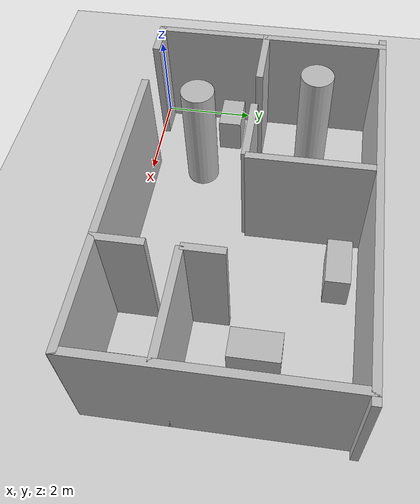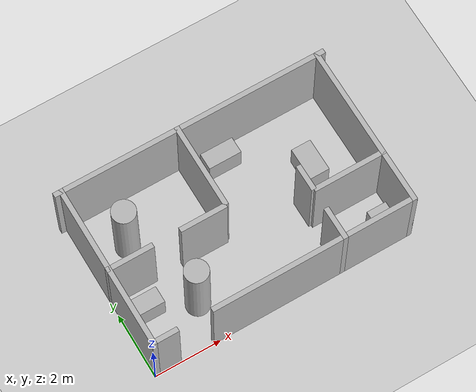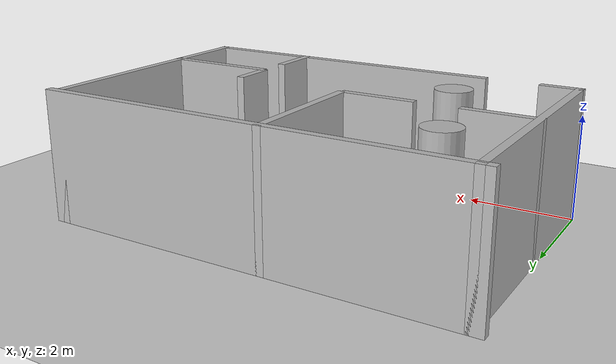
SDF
<?xml version="1.0" ?>
<sdf version="1.6">
  <world name="fire_control_room">

    <include><uri>model://sun</uri></include>
    <include><uri>model://ground_plane</uri></include>

    <!-- ================= 外墙 ================= -->
    <!-- 前侧入口 x=0.8~1.8，净宽 1.0m -->
    <model name="wall_south_left"><static>true</static>
      <pose>0.40 0.075 1.25 0 0 0</pose>
      <link name="l">
        <collision name="c"><geometry><box><size>0.80 0.15 2.5</size></box></geometry></collision>
        <visual name="v"><geometry><box><size>0.80 0.15 2.5</size></box></geometry></visual>
      </link>
    </model>
    <model name="wall_south_right"><static>true</static>
      <pose>4.90 0.075 1.25 0 0 0</pose>
      <link name="l">
        <collision name="c"><geometry><box><size>6.20 0.15 2.5</size></box></geometry></collision>
        <visual name="v"><geometry><box><size>6.20 0.15 2.5</size></box></geometry></visual>
      </link>
    </model>
    <model name="wall_north"><static>true</static>
      <pose>4.0 4.925 1.25 0 0 0</pose>
      <link name="l">
        <collision name="c"><geometry><box><size>8.30 0.15 2.5</size></box></geometry></collision>
        <visual name="v"><geometry><box><size>8.30 0.15 2.5</size></box></geometry></visual>
      </link>
    </model>
    <model name="wall_west"><static>true</static>
      <pose>0.075 2.5 1.25 0 0 0</pose>
      <link name="l">
        <collision name="c"><geometry><box><size>0.15 5.0 2.5</size></box></geometry></collision>
        <visual name="v"><geometry><box><size>0.15 5.0 2.5</size></box></geometry></visual>
      </link>
    </model>
    <model name="wall_east"><static>true</static>
      <pose>7.925 2.5 1.25 0 0 0</pose>
      <link name="l">
        <collision name="c"><geometry><box><size>0.15 5.0 2.5</size></box></geometry></collision>
        <visual name="v"><geometry><box><size>0.15 5.0 2.5</size></box></geometry></visual>
      </link>
    </model>

    <!-- ========== 中部横墙（y≈2.4，留门洞 x 1.4~2.2，净宽 0.8m）========== -->
    <model name="wall_mid_a"><static>true</static>
      <pose>0.70 2.40 1.25 0 0 0</pose>
      <link name="l">
        <collision name="c"><geometry><box><size>1.40 0.15 2.5</size></box></geometry></collision>
        <visual name="v"><geometry><box><size>1.40 0.15 2.5</size></box></geometry></visual>
      </link>
    </model>
    <model name="wall_mid_b"><static>true</static>
      <pose>2.90 2.40 1.25 0 0 0</pose>
      <link name="l">
        <collision name="c"><geometry><box><size>1.40 0.15 2.5</size></box></geometry></collision>
        <visual name="v"><geometry><box><size>1.40 0.15 2.5</size></box></geometry></visual>
      </link>
    </model>

    <!-- ===== 右上竖向分隔墙（x≈3.6，y 2.4~5）===== -->
    <model name="wall_v_upper"><static>true</static>
      <pose>3.60 3.70 1.25 0 0 0</pose>
      <link name="l">
        <collision name="c"><geometry><box><size>0.15 2.60 2.5</size></box></geometry></collision>
        <visual name="v"><geometry><box><size>0.15 2.60 2.5</size></box></geometry></visual>
      </link>
    </model>

    <!-- ==== 右下竖向分隔墙（x≈5.8，y 0~2.4，留门洞 y 1.0~1.6）==== -->
    <model name="wall_v_lower_a"><static>true</static>
      <pose>5.80 0.50 1.25 0 0 0</pose>
      <link name="l">
        <collision name="c"><geometry><box><size>0.15 1.00 2.5</size></box></geometry></collision>
        <visual name="v"><geometry><box><size>0.15 1.00 2.5</size></box></geometry></visual>
      </link>
    </model>
    <model name="wall_v_lower_b"><static>true</static>
      <pose>5.80 2.00 1.25 0 0 0</pose>
      <link name="l">
        <collision name="c"><geometry><box><size>0.15 0.80 2.5</size></box></geometry></collision>
        <visual name="v"><geometry><box><size>0.15 0.80 2.5</size></box></geometry></visual>
      </link>
    </model>

    <!-- ===== 右下横墙（y≈1.6，x 5.8~8）===== -->
    <model name="wall_lower_h"><static>true</static>
      <pose>6.90 1.60 1.25 0 0 0</pose>
      <link name="l">
        <collision name="c"><geometry><box><size>2.20 0.15 2.5</size></box></geometry></collision>
        <visual name="v"><geometry><box><size>2.20 0.15 2.5</size></box></geometry></visual>
      </link>
    </model>

    <!-- ================= 圆柱（柱）================= -->
    <model name="pillar_1"><static>true</static>
      <pose>1.20 3.60 1.25 0 0 0</pose>
      <link name="l">
        <collision name="c"><geometry><cylinder><radius>0.35</radius><length>2.5</length></cylinder></geometry></collision>
        <visual name="v"><geometry><cylinder><radius>0.35</radius><length>2.5</length></cylinder></geometry></visual>
      </link>
    </model>
    <model name="pillar_2"><static>true</static>
      <pose>2.00 1.20 1.25 0 0 0</pose>
      <link name="l">
        <collision name="c"><geometry><cylinder><radius>0.35</radius><length>2.5</length></cylinder></geometry></collision>
        <visual name="v"><geometry><cylinder><radius>0.35</radius><length>2.5</length></cylinder></geometry></visual>
      </link>
    </model>

    <!-- ================= 设备 / 家具（箱体）================= -->
    <model name="equip_a"><static>true</static>
      <!-- 从左上房间门前移开，避免把 0.8m 门洞挤窄 -->
      <pose>0.75 1.70 0.40 0 0 0</pose>
      <link name="l">
        <collision name="c"><geometry><box><size>0.80 0.50 0.80</size></box></geometry></collision>
        <visual name="v"><geometry><box><size>0.80 0.50 0.80</size></box></geometry></visual>
      </link>
    </model>
    <model name="equip_b"><static>true</static>
      <!-- 与 y=1.6 的内墙分开 -->
      <pose>6.60 3.00 0.40 0 0 0</pose>
      <link name="l">
        <collision name="c"><geometry><box><size>0.60 1.00 0.80</size></box></geometry></collision>
        <visual name="v"><geometry><box><size>0.60 1.00 0.80</size></box></geometry></visual>
      </link>
    </model>
    <model name="equip_c"><static>true</static>
      <pose>4.60 4.40 0.40 0 0 0</pose>
      <link name="l">
        <collision name="c"><geometry><box><size>1.00 0.50 0.80</size></box></geometry></collision>
        <visual name="v"><geometry><box><size>1.00 0.50 0.80</size></box></geometry></visual>
      </link>
    </model>
    <model name="equip_d"><static>true</static>
      <pose>7.40 0.60 0.40 0 0 0</pose>
      <link name="l">
        <collision name="c"><geometry><box><size>0.60 0.60 0.80</size></box></geometry></collision>
        <visual name="v"><geometry><box><size>0.60 0.60 0.80</size></box></geometry></visual>
      </link>
    </model>

  </world>
</sdf>
